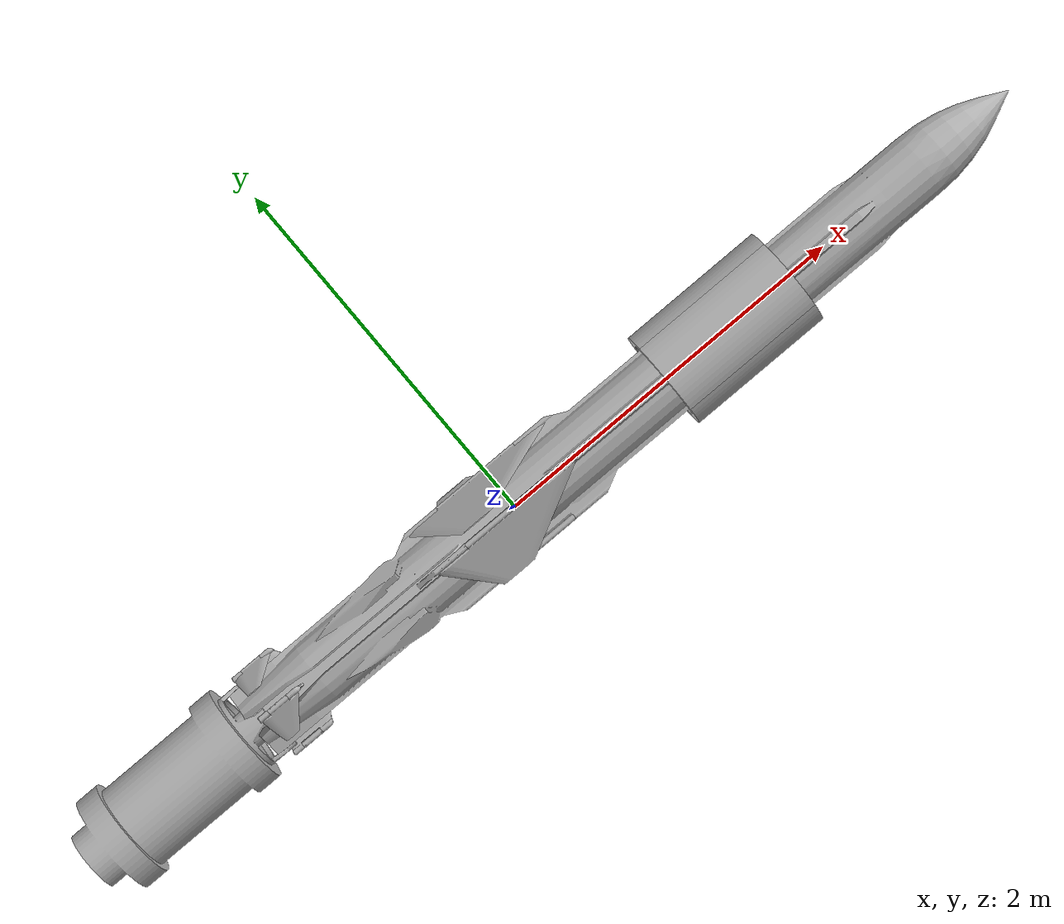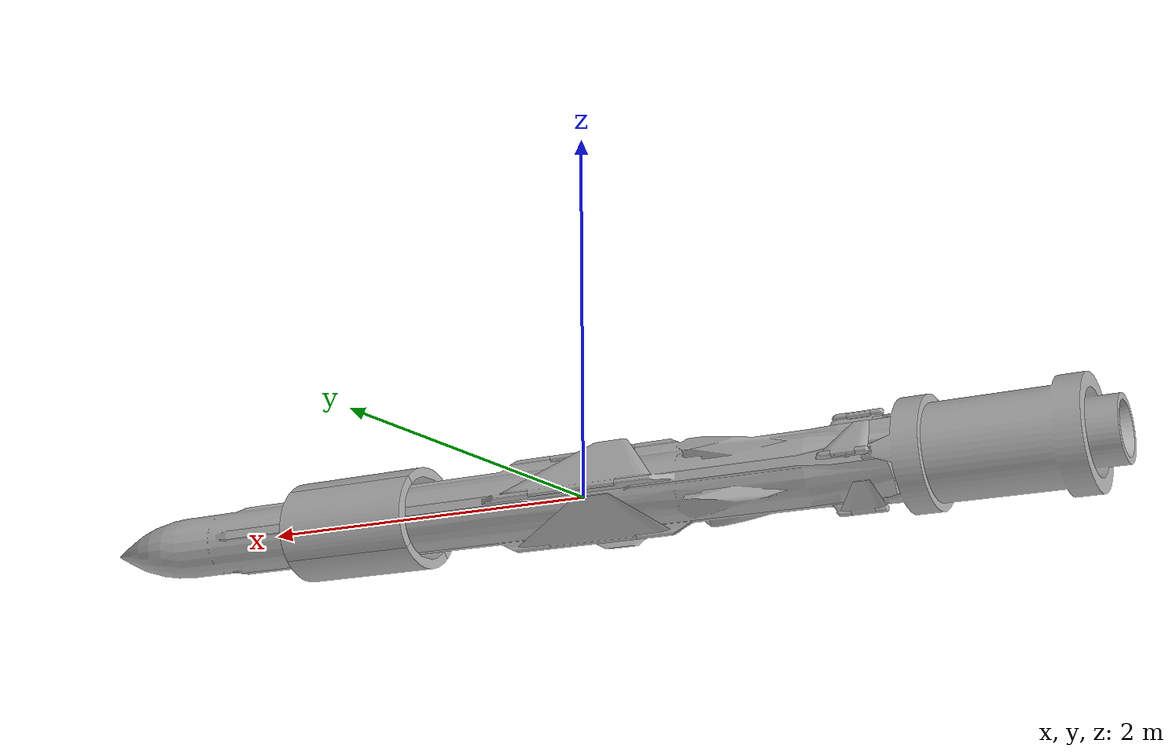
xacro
<?xml version="1.0" ?>
<robot name="exocet_mm40b3" xmlns:xacro="http://www.ros.org/wiki/xacro">

<xacro:include filename="$(find exocet_mm40b3_description)/urdf/materials.xacro" />
<xacro:include filename="$(find exocet_mm40b3_description)/urdf/exocet_mm40b3.trans" />
<xacro:include filename="$(find exocet_mm40b3_description)/urdf/exocet_mm40b3.gazebo" />
<link name="base_link">
  <inertial>
    <origin xyz="0.6111487363868037 -9.76514281557685e-10 9.765135572714681e-10" rpy="0 0 0"/>
    <mass value="564.9695328358481"/>
    <inertia ixx="13.560396" iyy="1088.286862" izz="1088.286862" ixy="-0.0" iyz="0.0" ixz="0.0"/>
  </inertial>
  <visual>
    <origin xyz="0 0 0" rpy="0 0 0"/>
    <geometry>
      <mesh filename="package://exocet_mm40b3_description/meshes/base_link.stl" scale="0.001 0.001 0.001"/>
    </geometry>
    <material name="silver"/>
  </visual>
  <collision>
    <origin xyz="0 0 0" rpy="0 0 0"/>
    <geometry>
      <mesh filename="package://exocet_mm40b3_description/meshes/base_link.stl" scale="0.001 0.001 0.001"/>
    </geometry>
  </collision>
</link>

<link name="Fin_1">
  <inertial>
    <origin xyz="-0.01567003850913462 -0.05105851626061409 -0.03315778654302706" rpy="0 0 0"/>
    <mass value="1.1914641784690367"/>
    <inertia ixx="0.003045" iyy="0.003419" izz="0.004631" ixy="-0.000707" iyz="-0.00136" ixz="-0.000459"/>
  </inertial>
  <visual>
    <origin xyz="1.508834 0.0 -0.235" rpy="0 0 0"/>
    <geometry>
      <mesh filename="package://exocet_mm40b3_description/meshes/Fin_1.stl" scale="0.001 0.001 0.001"/>
    </geometry>
    <material name="silver"/>
  </visual>
  <collision>
    <origin xyz="1.508834 0.0 -0.235" rpy="0 0 0"/>
    <geometry>
      <mesh filename="package://exocet_mm40b3_description/meshes/Fin_1.stl" scale="0.001 0.001 0.001"/>
    </geometry>
  </collision>
</link>

<link name="FinHolder_1">
  <inertial>
    <origin xyz="0.011989934287514492 3.4948123536970334e-06 0.035203705025338594" rpy="0 0 0"/>
    <mass value="0.6136418967408529"/>
    <inertia ixx="0.000219" iyy="0.004162" izz="0.003989" ixy="-0.0" iyz="-0.0" ixz="3.8e-05"/>
  </inertial>
  <visual>
    <origin xyz="1.508834 0.0 -0.18" rpy="0 0 0"/>
    <geometry>
      <mesh filename="package://exocet_mm40b3_description/meshes/FinHolder_1.stl" scale="0.001 0.001 0.001"/>
    </geometry>
    <material name="silver"/>
  </visual>
  <collision>
    <origin xyz="1.508834 0.0 -0.18" rpy="0 0 0"/>
    <geometry>
      <mesh filename="package://exocet_mm40b3_description/meshes/FinHolder_1.stl" scale="0.001 0.001 0.001"/>
    </geometry>
  </collision>
</link>

<link name="Fin_4">
  <inertial>
    <origin xyz="-0.01567003850913462 0.03315778654302701 -0.05105851430757993" rpy="0 0 0"/>
    <mass value="1.1914641784690367"/>
    <inertia ixx="0.003045" iyy="0.004631" izz="0.003419" ixy="0.000459" iyz="0.00136" ixz="-0.000707"/>
  </inertial>
  <visual>
    <origin xyz="1.508834 0.235 -0.0" rpy="0 0 0"/>
    <geometry>
      <mesh filename="package://exocet_mm40b3_description/meshes/Fin_4.stl" scale="0.001 0.001 0.001"/>
    </geometry>
    <material name="silver"/>
  </visual>
  <collision>
    <origin xyz="1.508834 0.235 -0.0" rpy="0 0 0"/>
    <geometry>
      <mesh filename="package://exocet_mm40b3_description/meshes/Fin_4.stl" scale="0.001 0.001 0.001"/>
    </geometry>
  </collision>
</link>

<link name="FinHolder_4">
  <inertial>
    <origin xyz="0.011989934287514492 -0.03520370502533865 3.4967653878920464e-06" rpy="0 0 0"/>
    <mass value="0.6136418967408529"/>
    <inertia ixx="0.000219" iyy="0.003989" izz="0.004162" ixy="-3.8e-05" iyz="0.0" ixz="-0.0"/>
  </inertial>
  <visual>
    <origin xyz="1.508834 0.18 -0.0" rpy="0 0 0"/>
    <geometry>
      <mesh filename="package://exocet_mm40b3_description/meshes/FinHolder_4.stl" scale="0.001 0.001 0.001"/>
    </geometry>
    <material name="silver"/>
  </visual>
  <collision>
    <origin xyz="1.508834 0.18 -0.0" rpy="0 0 0"/>
    <geometry>
      <mesh filename="package://exocet_mm40b3_description/meshes/FinHolder_4.stl" scale="0.001 0.001 0.001"/>
    </geometry>
  </collision>
</link>

<link name="Fin_3">
  <inertial>
    <origin xyz="-0.015670038509135065 0.05105822037918793 0.033157788496061325" rpy="0 0 0"/>
    <mass value="1.1914641784690367"/>
    <inertia ixx="0.003045" iyy="0.003419" izz="0.004631" ixy="0.000707" iyz="-0.00136" ixz="0.000459"/>
  </inertial>
  <visual>
    <origin xyz="1.508834 1.7e-05 0.235" rpy="0 0 0"/>
    <geometry>
      <mesh filename="package://exocet_mm40b3_description/meshes/Fin_3.stl" scale="0.001 0.001 0.001"/>
    </geometry>
    <material name="silver"/>
  </visual>
  <collision>
    <origin xyz="1.508834 1.7e-05 0.235" rpy="0 0 0"/>
    <geometry>
      <mesh filename="package://exocet_mm40b3_description/meshes/Fin_3.stl" scale="0.001 0.001 0.001"/>
    </geometry>
  </collision>
</link>

<link name="FinHolder_3">
  <inertial>
    <origin xyz="0.011989934287514492 -3.496765387940896e-06 -0.03520370307230428" rpy="0 0 0"/>
    <mass value="0.6136418967408529"/>
    <inertia ixx="0.000219" iyy="0.004162" izz="0.003989" ixy="0.0" iyz="-0.0" ixz="-3.8e-05"/>
  </inertial>
  <visual>
    <origin xyz="1.508834 0.0 0.18" rpy="0 0 0"/>
    <geometry>
      <mesh filename="package://exocet_mm40b3_description/meshes/FinHolder_3.stl" scale="0.001 0.001 0.001"/>
    </geometry>
    <material name="silver"/>
  </visual>
  <collision>
    <origin xyz="1.508834 0.0 0.18" rpy="0 0 0"/>
    <geometry>
      <mesh filename="package://exocet_mm40b3_description/meshes/FinHolder_3.stl" scale="0.001 0.001 0.001"/>
    </geometry>
  </collision>
</link>

<link name="Fin_2">
  <inertial>
    <origin xyz="-0.01567003850913551 -0.033157788496061325 0.051058222332222306" rpy="0 0 0"/>
    <mass value="1.1914641784690367"/>
    <inertia ixx="0.003045" iyy="0.004631" izz="0.003419" ixy="-0.000459" iyz="0.00136" ixz="0.000707"/>
  </inertial>
  <visual>
    <origin xyz="1.508834 -0.235 1.7e-05" rpy="0 0 0"/>
    <geometry>
      <mesh filename="package://exocet_mm40b3_description/meshes/Fin_2.stl" scale="0.001 0.001 0.001"/>
    </geometry>
    <material name="silver"/>
  </visual>
  <collision>
    <origin xyz="1.508834 -0.235 1.7e-05" rpy="0 0 0"/>
    <geometry>
      <mesh filename="package://exocet_mm40b3_description/meshes/Fin_2.stl" scale="0.001 0.001 0.001"/>
    </geometry>
  </collision>
</link>

<link name="FinHolder_2">
  <inertial>
    <origin xyz="0.011989934287514048 0.035203703072304304 -3.4948123536082156e-06" rpy="0 0 0"/>
    <mass value="0.6136418967408529"/>
    <inertia ixx="0.000219" iyy="0.003989" izz="0.004162" ixy="3.8e-05" iyz="0.0" ixz="0.0"/>
  </inertial>
  <visual>
    <origin xyz="1.508834 -0.18 -0.0" rpy="0 0 0"/>
    <geometry>
      <mesh filename="package://exocet_mm40b3_description/meshes/FinHolder_2.stl" scale="0.001 0.001 0.001"/>
    </geometry>
    <material name="silver"/>
  </visual>
  <collision>
    <origin xyz="1.508834 -0.18 -0.0" rpy="0 0 0"/>
    <geometry>
      <mesh filename="package://exocet_mm40b3_description/meshes/FinHolder_2.stl" scale="0.001 0.001 0.001"/>
    </geometry>
  </collision>
</link>

<link name="Wing1_1">
  <inertial>
    <origin xyz="-0.040666207659852904 -0.08074492818224165 -0.05243595001666804" rpy="0 0 0"/>
    <mass value="7.941525705671461"/>
    <inertia ixx="0.045859" iyy="0.280396" izz="0.29884" ixy="-0.016465" iyz="-0.020713" ixz="-0.010693"/>
  </inertial>
  <visual>
    <origin xyz="0.055606 0.0 -0.231018" rpy="0 0 0"/>
    <geometry>
      <mesh filename="package://exocet_mm40b3_description/meshes/Wing1_1.stl" scale="0.001 0.001 0.001"/>
    </geometry>
    <material name="silver"/>
  </visual>
  <collision>
    <origin xyz="0.055606 0.0 -0.231018" rpy="0 0 0"/>
    <geometry>
      <mesh filename="package://exocet_mm40b3_description/meshes/Wing1_1.stl" scale="0.001 0.001 0.001"/>
    </geometry>
  </collision>
</link>

<link name="Booster_1">
  <inertial>
    <origin xyz="-0.5309883305776795 4.1152716735485273e-10 1.8088332072416784e-09" rpy="0 0 0"/>
    <mass value="138.76341026969325"/>
    <inertia ixx="6.064544" iyy="17.450475" izz="17.450475" ixy="-0.0" iyz="0.0" ixz="-0.0"/>
  </inertial>
  <visual>
    <origin xyz="1.688846 0.0 -0.0" rpy="0 0 0"/>
    <geometry>
      <mesh filename="package://exocet_mm40b3_description/meshes/Booster_1.stl" scale="0.001 0.001 0.001"/>
    </geometry>
    <material name="silver"/>
  </visual>
  <collision>
    <origin xyz="1.688846 0.0 -0.0" rpy="0 0 0"/>
    <geometry>
      <mesh filename="package://exocet_mm40b3_description/meshes/Booster_1.stl" scale="0.001 0.001 0.001"/>
    </geometry>
  </collision>
</link>

<link name="Wing1_2">
  <inertial>
    <origin xyz="-0.040666207659852974 -0.05189131293468413 0.07990625761429629" rpy="0 0 0"/>
    <mass value="7.941525705671461"/>
    <inertia ixx="0.045859" iyy="0.29884" izz="0.280396" ixy="-0.010693" iyz="0.020713" ixz="0.016465"/>
  </inertial>
  <visual>
    <origin xyz="0.055606 -0.231018 -0.0" rpy="0 0 0"/>
    <geometry>
      <mesh filename="package://exocet_mm40b3_description/meshes/Wing1_2.stl" scale="0.001 0.001 0.001"/>
    </geometry>
    <material name="silver"/>
  </visual>
  <collision>
    <origin xyz="0.055606 -0.231018 -0.0" rpy="0 0 0"/>
    <geometry>
      <mesh filename="package://exocet_mm40b3_description/meshes/Wing1_2.stl" scale="0.001 0.001 0.001"/>
    </geometry>
  </collision>
</link>

<link name="Wing1_3">
  <inertial>
    <origin xyz="-0.04066620765985304 0.07990625566126518 0.05189131293468455" rpy="0 0 0"/>
    <mass value="7.941525705671461"/>
    <inertia ixx="0.045859" iyy="0.280396" izz="0.29884" ixy="0.016465" iyz="-0.020713" ixz="0.010693"/>
  </inertial>
  <visual>
    <origin xyz="0.055606 0.0 0.231018" rpy="0 0 0"/>
    <geometry>
      <mesh filename="package://exocet_mm40b3_description/meshes/Wing1_3.stl" scale="0.001 0.001 0.001"/>
    </geometry>
    <material name="silver"/>
  </visual>
  <collision>
    <origin xyz="0.055606 0.0 0.231018" rpy="0 0 0"/>
    <geometry>
      <mesh filename="package://exocet_mm40b3_description/meshes/Wing1_3.stl" scale="0.001 0.001 0.001"/>
    </geometry>
  </collision>
</link>

<link name="Wing1_4">
  <inertial>
    <origin xyz="-0.04066620765985225 0.05189131098165295 -0.07990625566126565" rpy="0 0 0"/>
    <mass value="7.941525705671461"/>
    <inertia ixx="0.045859" iyy="0.29884" izz="0.280396" ixy="0.010693" iyz="0.020713" ixz="-0.016465"/>
  </inertial>
  <visual>
    <origin xyz="0.055606 0.231018 -0.0" rpy="0 0 0"/>
    <geometry>
      <mesh filename="package://exocet_mm40b3_description/meshes/Wing1_4.stl" scale="0.001 0.001 0.001"/>
    </geometry>
    <material name="silver"/>
  </visual>
  <collision>
    <origin xyz="0.055606 0.231018 -0.0" rpy="0 0 0"/>
    <geometry>
      <mesh filename="package://exocet_mm40b3_description/meshes/Wing1_4.stl" scale="0.001 0.001 0.001"/>
    </geometry>
  </collision>
</link>

<link name="Holder_1">
  <inertial>
    <origin xyz="-0.1999999917328794 -9.765093429786492e-10 0.03551866363101741" rpy="0 0 0"/>
    <mass value="12.2115195694117"/>
    <inertia ixx="0.166572" iyy="0.702777" izz="0.847629" ixy="-0.0" iyz="-0.0" ixz="-0.0"/>
  </inertial>
  <visual>
    <origin xyz="-1.567625 0.0 -0.187374" rpy="0 0 0"/>
    <geometry>
      <mesh filename="package://exocet_mm40b3_description/meshes/Holder_1.stl" scale="0.001 0.001 0.001"/>
    </geometry>
    <material name="silver"/>
  </visual>
  <collision>
    <origin xyz="-1.567625 0.0 -0.187374" rpy="0 0 0"/>
    <geometry>
      <mesh filename="package://exocet_mm40b3_description/meshes/Holder_1.stl" scale="0.001 0.001 0.001"/>
    </geometry>
  </collision>
</link>

<link name="Holder_2">
  <inertial>
    <origin xyz="-0.1999999917328794 -0.03551866363101741 -9.765093293304098e-10" rpy="0 0 0"/>
    <mass value="12.2115195694117"/>
    <inertia ixx="0.166572" iyy="0.847629" izz="0.702777" ixy="0.0" iyz="0.0" ixz="-0.0"/>
  </inertial>
  <visual>
    <origin xyz="-1.567625 0.187374 -0.0" rpy="0 0 0"/>
    <geometry>
      <mesh filename="package://exocet_mm40b3_description/meshes/Holder_2.stl" scale="0.001 0.001 0.001"/>
    </geometry>
    <material name="silver"/>
  </visual>
  <collision>
    <origin xyz="-1.567625 0.187374 -0.0" rpy="0 0 0"/>
    <geometry>
      <mesh filename="package://exocet_mm40b3_description/meshes/Holder_2.stl" scale="0.001 0.001 0.001"/>
    </geometry>
  </collision>
</link>

<link name="Holder_3">
  <inertial>
    <origin xyz="-0.1999999917328794 9.765093156821704e-10 -0.03551866363101741" rpy="0 0 0"/>
    <mass value="12.2115195694117"/>
    <inertia ixx="0.166572" iyy="0.702777" izz="0.847629" ixy="0.0" iyz="-0.0" ixz="0.0"/>
  </inertial>
  <visual>
    <origin xyz="-1.567625 0.0 0.187374" rpy="0 0 0"/>
    <geometry>
      <mesh filename="package://exocet_mm40b3_description/meshes/Holder_3.stl" scale="0.001 0.001 0.001"/>
    </geometry>
    <material name="silver"/>
  </visual>
  <collision>
    <origin xyz="-1.567625 0.0 0.187374" rpy="0 0 0"/>
    <geometry>
      <mesh filename="package://exocet_mm40b3_description/meshes/Holder_3.stl" scale="0.001 0.001 0.001"/>
    </geometry>
  </collision>
</link>

<link name="Holder_4">
  <inertial>
    <origin xyz="-0.1999999917328794 0.03551866363101741 9.765093020339312e-10" rpy="0 0 0"/>
    <mass value="12.2115195694117"/>
    <inertia ixx="0.166572" iyy="0.847629" izz="0.702777" ixy="-0.0" iyz="0.0" ixz="0.0"/>
  </inertial>
  <visual>
    <origin xyz="-1.567625 -0.187374 -0.0" rpy="0 0 0"/>
    <geometry>
      <mesh filename="package://exocet_mm40b3_description/meshes/Holder_4.stl" scale="0.001 0.001 0.001"/>
    </geometry>
    <material name="silver"/>
  </visual>
  <collision>
    <origin xyz="-1.567625 -0.187374 -0.0" rpy="0 0 0"/>
    <geometry>
      <mesh filename="package://exocet_mm40b3_description/meshes/Holder_4.stl" scale="0.001 0.001 0.001"/>
    </geometry>
  </collision>
</link>

<joint name="fins_fold1" type="revolute">
  <origin xyz="0.0 0.0 0.055" rpy="0 0 0"/>
  <parent link="FinHolder_1"/>
  <child link="Fin_1"/>
  <axis xyz="-1.0 0.0 -0.0"/>
  <limit upper="2.146755" lower="0.0" effort="100" velocity="100"/>
</joint>

<joint name="fins_rev1" type="revolute">
  <origin xyz="-1.508834 0.0 0.18" rpy="0 0 0"/>
  <parent link="base_link"/>
  <child link="FinHolder_1"/>
  <axis xyz="-0.0 -0.0 1.0"/>
  <limit upper="0.349066" lower="-0.349066" effort="100" velocity="100"/>
</joint>

<joint name="fins_fold4" type="revolute">
  <origin xyz="0.0 -0.055 0.0" rpy="0 0 0"/>
  <parent link="FinHolder_4"/>
  <child link="Fin_4"/>
  <axis xyz="-1.0 0.0 0.0"/>
  <limit upper="2.146755" lower="0.0" effort="100" velocity="100"/>
</joint>

<joint name="fins_rev4" type="revolute">
  <origin xyz="-1.508834 -0.18 0.0" rpy="0 0 0"/>
  <parent link="base_link"/>
  <child link="FinHolder_4"/>
  <axis xyz="-0.0 -1.0 -0.0"/>
  <limit upper="0.349066" lower="-0.349066" effort="100" velocity="100"/>
</joint>

<joint name="fins_fold3" type="revolute">
  <origin xyz="0.0 -1.7e-05 -0.055" rpy="0 0 0"/>
  <parent link="FinHolder_3"/>
  <child link="Fin_3"/>
  <axis xyz="-1.0 0.0 -0.0"/>
  <limit upper="2.146755" lower="0.0" effort="100" velocity="100"/>
</joint>

<joint name="fins_rev3" type="revolute">
  <origin xyz="-1.508834 0.0 -0.18" rpy="0 0 0"/>
  <parent link="base_link"/>
  <child link="FinHolder_3"/>
  <axis xyz="-0.0 0.0 -1.0"/>
  <limit upper="0.349066" lower="-0.349066" effort="100" velocity="100"/>
</joint>

<joint name="fins_fold2" type="revolute">
  <origin xyz="0.0 0.055 -1.7e-05" rpy="0 0 0"/>
  <parent link="FinHolder_2"/>
  <child link="Fin_2"/>
  <axis xyz="-1.0 0.0 0.0"/>
  <limit upper="2.146755" lower="0.0" effort="100" velocity="100"/>
</joint>

<joint name="fins_rev2" type="revolute">
  <origin xyz="-1.508834 0.18 0.0" rpy="0 0 0"/>
  <parent link="base_link"/>
  <child link="FinHolder_2"/>
  <axis xyz="-0.0 1.0 0.0"/>
  <limit upper="0.349066" lower="-0.349066" effort="100" velocity="100"/>
</joint>

<joint name="wings_fold1" type="revolute">
  <origin xyz="-0.055606 0.0 0.231018" rpy="0 0 0"/>
  <parent link="base_link"/>
  <child link="Wing1_1"/>
  <axis xyz="1.0 0.0 -0.0"/>
  <limit upper="0.0" lower="-2.146755" effort="100" velocity="100"/>
</joint>

<joint name="booster_fixing" type="fixed">
  <origin xyz="-1.688846 0.0 0.0" rpy="0 0 0"/>
  <parent link="base_link"/>
  <child link="Booster_1"/>
</joint>

<joint name="wings_fold2" type="revolute">
  <origin xyz="-0.055606 0.231018 0.0" rpy="0 0 0"/>
  <parent link="base_link"/>
  <child link="Wing1_2"/>
  <axis xyz="1.0 0.0 -0.0"/>
  <limit upper="0.0" lower="-2.146755" effort="100" velocity="100"/>
</joint>

<joint name="wings_fold3" type="revolute">
  <origin xyz="-0.055606 0.0 -0.231018" rpy="0 0 0"/>
  <parent link="base_link"/>
  <child link="Wing1_3"/>
  <axis xyz="1.0 0.0 -0.0"/>
  <limit upper="0.0" lower="-2.146755" effort="100" velocity="100"/>
</joint>

<joint name="wings_fold4" type="revolute">
  <origin xyz="-0.055606 -0.231018 0.0" rpy="0 0 0"/>
  <parent link="base_link"/>
  <child link="Wing1_4"/>
  <axis xyz="1.0 0.0 -0.0"/>
  <limit upper="0.0" lower="-2.146755" effort="100" velocity="100"/>
</joint>

<joint name="HolderJoint1" type="fixed">
  <origin xyz="1.567625 0.0 0.187374" rpy="0 0 0"/>
  <parent link="base_link"/>
  <child link="Holder_1"/>
</joint>

<joint name="HolderJoint2" type="fixed">
  <origin xyz="1.567625 -0.187374 0.0" rpy="0 0 0"/>
  <parent link="base_link"/>
  <child link="Holder_2"/>
</joint>

<joint name="HolderJoint3" type="fixed">
  <origin xyz="1.567625 0.0 -0.187374" rpy="0 0 0"/>
  <parent link="base_link"/>
  <child link="Holder_3"/>
</joint>

<joint name="HolderJoint4" type="fixed">
  <origin xyz="1.567625 0.187374 0.0" rpy="0 0 0"/>
  <parent link="base_link"/>
  <child link="Holder_4"/>
</joint>

</robot>

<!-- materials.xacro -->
<robot name="exocet_mm40b3" xmlns:xacro="http://www.ros.org/wiki/xacro" >

<material name="silver">
  <color rgba="0.700 0.700 0.700 1.000"/>
</material>

</robot>

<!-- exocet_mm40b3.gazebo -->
<robot name="exocet_mm40b3" xmlns:xacro="http://www.ros.org/wiki/xacro" >

<xacro:property name="body_color" value="Gazebo/Silver" />

<gazebo>
  <plugin name="exocet_mm40b3_controller" filename="libgazebo_ros_control.so">
    <robotNamespace>exocet_mm40b3_controller</robotNamespace>
    <robotSimType>gazebo_ros_control/DefaultRobotHWSim</robotSimType>
  </plugin>
</gazebo>
<gazebo reference="base_link">
  <material>${body_color}</material>
  <mu1>0.2</mu1>
  <mu2>0.2</mu2>
  <selfCollide>true</selfCollide>
  <gravity>true</gravity>
</gazebo>

<gazebo reference="Fin_1">
  <material>${body_color}</material>
  <mu1>0.2</mu1>
  <mu2>0.2</mu2>
  <selfCollide>true</selfCollide>
</gazebo>

<gazebo reference="FinHolder_1">
  <material>${body_color}</material>
  <mu1>0.2</mu1>
  <mu2>0.2</mu2>
  <selfCollide>true</selfCollide>
</gazebo>

<gazebo reference="Fin_4">
  <material>${body_color}</material>
  <mu1>0.2</mu1>
  <mu2>0.2</mu2>
  <selfCollide>true</selfCollide>
</gazebo>

<gazebo reference="FinHolder_4">
  <material>${body_color}</material>
  <mu1>0.2</mu1>
  <mu2>0.2</mu2>
  <selfCollide>true</selfCollide>
</gazebo>

<gazebo reference="Fin_3">
  <material>${body_color}</material>
  <mu1>0.2</mu1>
  <mu2>0.2</mu2>
  <selfCollide>true</selfCollide>
</gazebo>

<gazebo reference="FinHolder_3">
  <material>${body_color}</material>
  <mu1>0.2</mu1>
  <mu2>0.2</mu2>
  <selfCollide>true</selfCollide>
</gazebo>

<gazebo reference="Fin_2">
  <material>${body_color}</material>
  <mu1>0.2</mu1>
  <mu2>0.2</mu2>
  <selfCollide>true</selfCollide>
</gazebo>

<gazebo reference="FinHolder_2">
  <material>${body_color}</material>
  <mu1>0.2</mu1>
  <mu2>0.2</mu2>
  <selfCollide>true</selfCollide>
</gazebo>

<gazebo reference="Wing1_1">
  <material>${body_color}</material>
  <mu1>0.2</mu1>
  <mu2>0.2</mu2>
  <selfCollide>true</selfCollide>
</gazebo>

<gazebo reference="Booster_1">
  <material>${body_color}</material>
  <mu1>0.2</mu1>
  <mu2>0.2</mu2>
  <selfCollide>true</selfCollide>
</gazebo>

<gazebo reference="Wing1_2">
  <material>${body_color}</material>
  <mu1>0.2</mu1>
  <mu2>0.2</mu2>
  <selfCollide>true</selfCollide>
</gazebo>

<gazebo reference="Wing1_3">
  <material>${body_color}</material>
  <mu1>0.2</mu1>
  <mu2>0.2</mu2>
  <selfCollide>true</selfCollide>
</gazebo>

<gazebo reference="Wing1_4">
  <material>${body_color}</material>
  <mu1>0.2</mu1>
  <mu2>0.2</mu2>
  <selfCollide>true</selfCollide>
</gazebo>

<gazebo reference="Holder_1">
  <material>${body_color}</material>
  <mu1>0.2</mu1>
  <mu2>0.2</mu2>
  <selfCollide>false</selfCollide>
</gazebo>

<gazebo reference="Holder_2">
  <material>${body_color}</material>
  <mu1>0.2</mu1>
  <mu2>0.2</mu2>
  <selfCollide>false</selfCollide>
</gazebo>

<gazebo reference="Holder_3">
  <material>${body_color}</material>
  <mu1>0.2</mu1>
  <mu2>0.2</mu2>
  <selfCollide>false</selfCollide>
</gazebo>

<gazebo reference="Holder_4">
  <material>${body_color}</material>
  <mu1>0.2</mu1>
  <mu2>0.2</mu2>
  <selfCollide>false</selfCollide>
</gazebo>

<gazebo reference='booster_fixing'>
  <preserveFixedJoint>true</preserveFixedJoint>
</gazebo>

<gazebo reference='HolderJoint1'>
  <preserveFixedJoint>true</preserveFixedJoint>
</gazebo>

<gazebo reference='HolderJoint2'>
  <preserveFixedJoint>true</preserveFixedJoint>
</gazebo>

<gazebo reference='HolderJoint3'>
  <preserveFixedJoint>true</preserveFixedJoint>
</gazebo>

<gazebo reference='HolderJoint4'>
  <preserveFixedJoint>true</preserveFixedJoint>
</gazebo>

</robot>
